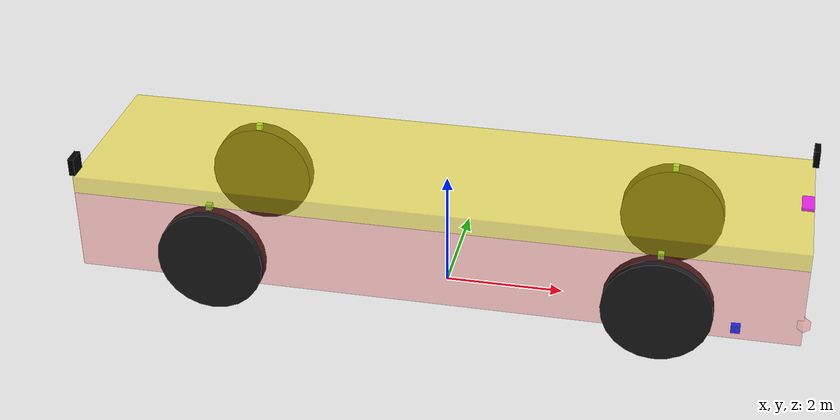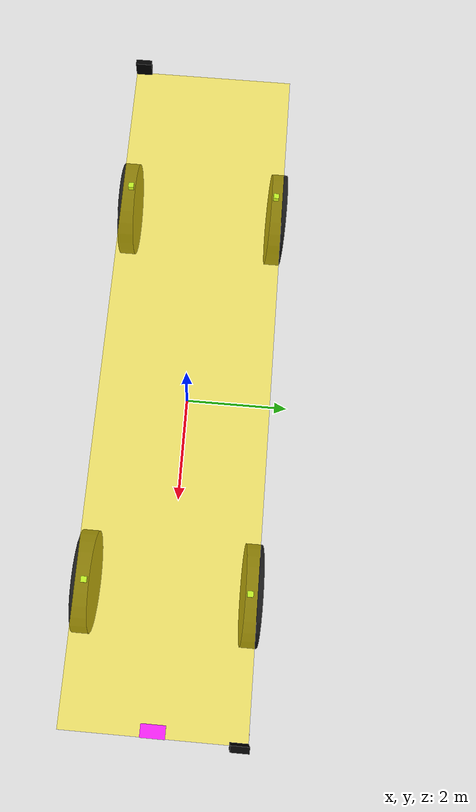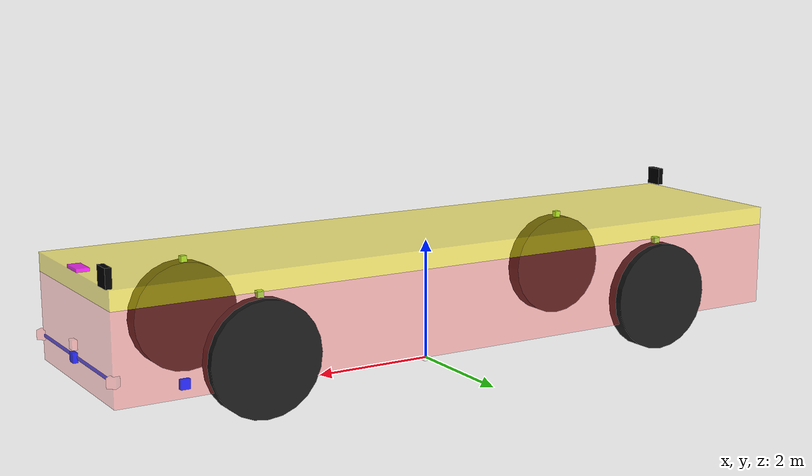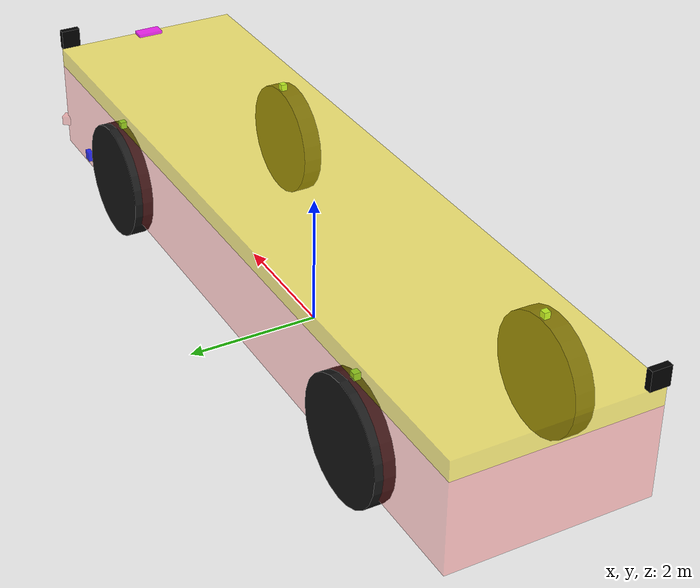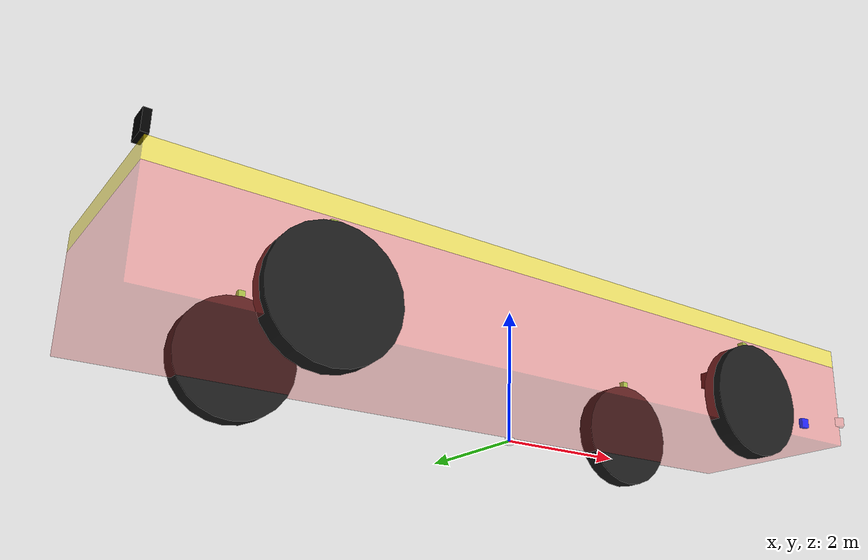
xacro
<?xml version="1.0"?>

<!-- Robot name -->
<robot name="agv" xmlns:xacro="http://www.ros.org/wiki/xacro">

<!-- Included URDF Files -->
<xacro:include filename="$(find agv_gazebo)/gazebo/agv_hil.gazebo" />
<xacro:include filename="$(find arts_description)/urdf/arts.xacro" />

<!-- user input dimensions  ( DEBUG: all mass values have been divided by 100 )  -->
<xacro:property name="robot"    value="agv" />
<xacro:property name="pi"       value="3.141592" />
<xacro:property name="body_length"   value="12." />
<xacro:property name="body_width"    value="3" />
<xacro:property name="body_height"   value="1.4" />
<xacro:property name="body_mass"   value="1000." />
<xacro:property name="platform_length"   value="${body_length}" />
<xacro:property name="platform_width"   value="3." />
<xacro:property name="platform_height"   value=".3" />
<xacro:property name="platform_mass"   value="500." />
<xacro:property name="wheel_width"    value="0.05" />
<xacro:property name="wheel_width_vis"    value="0.3" />
<xacro:property name="wheel_radius"   value="0.9" />
<xacro:property name="wheel_mass"   value="100." />
<xacro:property name="wheel_hinge_width"   value="0.1" />
<xacro:property name="wheel_hinge_mass"   value="10." />
<xacro:property name="lidar_mass"   value="1." />
<xacro:property name="lidar_side"   value="0.15" />

<!-- TNO definitions, measured in meters from ground -->
<xacro:property name="radarbeam_height"   value="0.05" />
<xacro:property name="radarbeam_mountingheight"   value="0.88" />
<xacro:property name="lider_side_mountingheight"   value="0.725" />
<xacro:property name="lider_side_offsetfront"   value="1.04" />
<xacro:property name="arts_mountingheight"	value="2.220" />
<xacro:property name="rtk_mountingheight"	value="1.720" />

<!-- derived dimensions -->
<xacro:property name="wheel_hinge_height"   value="${wheel_radius+0.1}" />
<xacro:property name="body_floor_clearance"   value="${wheel_radius+wheel_hinge_height-body_height}" />
<xacro:property name="footprint_to_baselink_height"   value="${body_floor_clearance+0.5*body_height}" />

<!-- calculated dimensions to measured dimension -->
<xacro:property name="baselink_to_ground_height"   value="${-footprint_to_baselink_height}" />
<xacro:property name="baselink_to_radarbeam_height"   value="${baselink_to_ground_height+radarbeam_mountingheight}" />
<xacro:property name="baselink_to_lidar_height"   value="${baselink_to_ground_height+lider_side_mountingheight}" />
<xacro:property name="baselink_to_arts_height"   value="${baselink_to_ground_height+arts_mountingheight}" />
<xacro:property name="baselink_to_rtk_height"   value="${baselink_to_ground_height+rtk_mountingheight}" />

<!-- ~~~~~~~~~~~~~~~~~~~~~~~ BODY AND PLATFORM ~~~~~~~~~~~~~~~~~~~~~~~~~~~~~~~~~~~~~~~~ -->

<!-- AGV Footprint Link (AGV footprint on ground)-->
<link name="${robot}_footprint">
    <visual>
        <origin xyz="0 0 0" rpy="0 0 0"/>
        <geometry>
            <box size="0.1 0.1 0.1"/>
        </geometry>
        <material name="white">
            <color rgba="1 1 1 0.1"/>
        </material>
    </visual>

<!--    Comment collision below for normal mode: wheels on te ground -->
<!--    Uncomment collision below for "Podium" mode: Useful to check wheel control without moving agv -->
   <collision>
        <origin xyz="0 0 0" rpy="0 0 0"/>
        <geometry>
            <box size="0.1 0.1 0.1"/>
        </geometry>
    </collision>
</link>

<!-- AGV Base Link (AGV body)-->
<joint name="${robot}_footprint_2_base" type="fixed" >
    <parent link="${robot}_footprint"/>
    <child link="${robot}_base_link"/>
    <origin xyz="0 0 ${footprint_to_baselink_height}" rpy="0 0 0"/>
</joint>
<link name="${robot}_base_link">
    <visual>
        <origin xyz="0 0 0" rpy="0 0 0"/>
        <geometry>
            <box size="${body_length} ${body_width} ${body_height}"/>
        </geometry>
        <material name="reddish">
            <color rgba="1 0.2 0.2 0.3"/>
        </material>
    </visual>

    <collision>
        <origin xyz="0 0 0" rpy="0 0 0"/>
        <geometry>
            <box size="${body_length} ${body_width} ${body_height}"/>
        </geometry>
    </collision>

    <inertial>
        <mass value="${body_mass}" />
        <origin xyz="0 0 0" rpy="0 0 0"/>
        <inertia ixx="${0.083*body_mass*(body_width*body_width+body_height*body_height)}"
                 ixy="0.0"
                 ixz="0.0"
                 iyy="${0.083*body_mass*(body_length*body_length+body_height*body_height)}"
                 iyz="0.0"
                 izz="${0.083*body_mass*(body_length*body_length+body_width*body_width)}" />
    </inertial>
</link>

<!-- AGV top platform-->
<joint name="${robot}_base_2_platform" type="fixed" >
    <parent link="${robot}_base_link"/>
    <child link="${robot}_platform"/>
    <origin xyz="0 0 ${0.5*body_height + 0.5*platform_height}" rpy="0 0 0"/>
</joint>
<link name="${robot}_platform">
    <visual>
        <origin xyz="0 0 0" rpy="0 0 0"/>
        <geometry>
            <box size="${platform_length} ${platform_width} ${platform_height}"/>
        </geometry>
        <material name="yellow">
            <color rgba="1.0 0.9 0.0 0.5"/>
        </material>
    </visual>

    <collision>
        <origin xyz="0 0 0" rpy="0 0 0"/>
        <geometry>
            <box size="${platform_length} ${platform_width} ${platform_height}"/>
        </geometry>
    </collision>

    <inertial>
        <mass value="${platform_mass}" />
        <origin xyz="0 0 0" rpy="0 0 0"/>
        <inertia ixx="${0.083*platform_mass*(platform_width*platform_width+platform_height*platform_height)}"
                    ixy="0.0"
                    ixz="0.0"
                    iyy="${0.083*platform_mass*(platform_length*platform_length+platform_height*platform_height)}"
                    iyz="0.0"
                    izz="${0.083*platform_mass*(platform_length*platform_length+platform_width*platform_width)}" />
    </inertial>
</link>

<!-- AGV forward marker -->
<joint name="${robot}_platform_2_fwd_mark" type="fixed" >
    <parent link="${robot}_platform"/>
    <child link="${robot}_fwd_mark"/>
    <origin xyz="${0.5*platform_length-0.1} 0 ${0.5*platform_height+0.025}" rpy="0 0 0"/>
</joint>
<link name="${robot}_fwd_mark">
    <visual>
        <origin xyz="0 0 0" rpy="0 0 0"/>
        <geometry>
            <box size="0.2 0.4 0.05"/>
        </geometry>
        <material name="purple">
            <color rgba="1.0 0.0 1.0 0.8"/>
        </material>
    </visual>

    <inertial>
        <mass value="0.01" />
        <origin xyz="0 0 0" rpy="0 0 0"/>
        <inertia ixx="0.01"
                ixy="0.0"
                ixz="0.0"
                iyy="0.01"
                iyz="0.0"
                izz="0.01" />
    </inertial>
</link>

<!-- ~~~~~~~~~~~~~~~~~~~~~~~~~~~~~~ WHEELS ~~~~~~~~~~~~~~~~~~~~~~~~~~~~~~~~~~~~~~~~~~~~ -->

<!-- front left hinge-->
<joint name="${robot}_platform_2_fl_hinge" type="revolute" >
    <parent link="${robot}_platform"/>
    <child link="${robot}_fl_hinge"/>
    <axis xyz="0 0 1"/>
    <limit effort="100000." lower="${-0.3*pi}" upper="${0.3*pi}" velocity="1."/>
    <dynamics damping="100."/>
    <origin xyz="${0.4*platform_length-wheel_radius-0.2} ${0.5*platform_width-0.5*wheel_hinge_width-wheel_width} ${-0.5*platform_height-0.5*wheel_hinge_height}" rpy="0 0 0"/>
</joint>
<link name="${robot}_fl_hinge">
    <visual>
        <origin xyz="0 0 0" rpy="0 0 0"/>
        <geometry>
            <box size="${wheel_hinge_width} ${wheel_hinge_width} ${wheel_hinge_height}"/>
        </geometry>
        <material name="green2">
            <color rgba="0.5 1 0.3 1"/>
        </material>
    </visual>

    <inertial>
        <mass value="${wheel_hinge_mass}" />
        <origin xyz="0 0 0" rpy="0 0 0"/>
        <inertia ixx="${0.083*wheel_hinge_mass*(wheel_hinge_width*wheel_hinge_width+wheel_hinge_height*wheel_hinge_height)}"
                    ixy="0.0"
                    ixz="0.0"
                    iyy="${0.083*wheel_hinge_mass*(wheel_hinge_width*wheel_hinge_width+wheel_hinge_height*wheel_hinge_height)}"
                    iyz="0.0"
                    izz="${0.083*wheel_hinge_mass*(wheel_hinge_width*wheel_hinge_width+wheel_hinge_width*wheel_hinge_width)}" />
    </inertial>

</link>

<!-- front left wheel-->
<joint name="${robot}_fl_hinge_2_wheel" type="continuous" >
    <parent link="${robot}_fl_hinge"/>
    <child link="${robot}_fl_wheel"/>
    <axis xyz="0 0 1"/>
    <limit effort="100000." velocity="${pi}"/>
    <dynamics damping="0.2"/>
    <origin xyz="0 ${0.5*wheel_hinge_width+0.5*wheel_width} ${-0.5*wheel_hinge_height}" rpy="${-0.5*pi} 0 0"/>
</joint>
<link name="${robot}_fl_wheel">
    <visual>
        <origin xyz="0 0 0" rpy="0 0 0"/>
        <geometry>
            <cylinder length="${wheel_width_vis}" radius="${wheel_radius}"/>
        </geometry>
        <material name="grey">
            <color rgba="0.1 0.1 0.1 1"/>
        </material>
    </visual>

    <collision>
        <origin xyz="0 0 0" rpy="0 0 0"/>
        <geometry>
            <cylinder length="${wheel_width}" radius="${wheel_radius}"/>
        </geometry>
    </collision>

    <inertial>
        <mass value="${wheel_mass}" />
        <origin xyz="0 0 0" rpy="0 0 0"/>
        <inertia ixx="${0.083*wheel_mass*(3*wheel_radius*wheel_radius+wheel_width*wheel_width)}"
                    ixy="0.0"
                    ixz="0.0"
                    iyy="${0.083*wheel_mass*(3*wheel_radius*wheel_radius+wheel_width*wheel_width)}"
                    iyz="0.0"
                    izz="${0.5*wheel_mass*wheel_radius*wheel_radius}" />
    </inertial>
</link>

<!-- front right hinge-->
<joint name="${robot}_platform_2_fr_hinge" type="revolute" >
    <parent link="${robot}_platform"/>
    <child link="${robot}_fr_hinge"/>
    <axis xyz="0 0 1"/>
    <limit effort="100000." lower="${-0.3*pi}" upper="${0.3*pi}" velocity="1."/>
    <dynamics damping="100."/>
    <origin xyz="${0.4*platform_length-wheel_radius-0.2} ${-0.5*platform_width+0.5*wheel_hinge_width+wheel_width} ${-0.5*platform_height-0.5*wheel_hinge_height}" rpy="0 0 0"/>
</joint>
<link name="${robot}_fr_hinge">
    <visual>
        <origin xyz="0 0 0" rpy="0 0 0"/>
        <geometry>
            <box size="${wheel_hinge_width} ${wheel_hinge_width} ${wheel_hinge_height}"/>
        </geometry>
        <material name="green2">
            <color rgba="0.5 1 0.3 1"/>
        </material>
    </visual>

    <inertial>
        <mass value="${wheel_hinge_mass}" />
        <origin xyz="0 0 0" rpy="0 0 0"/>
        <inertia ixx="${0.083*wheel_hinge_mass*(wheel_hinge_width*wheel_hinge_width+wheel_hinge_height*wheel_hinge_height)}"
                    ixy="0.0"
                    ixz="0.0"
                    iyy="${0.083*wheel_hinge_mass*(wheel_hinge_width*wheel_hinge_width+wheel_hinge_height*wheel_hinge_height)}"
                    iyz="0.0"
                    izz="${0.083*wheel_hinge_mass*(wheel_hinge_width*wheel_hinge_width+wheel_hinge_width*wheel_hinge_width)}" />
    </inertial>

</link>

<!-- front right wheel-->
<joint name="${robot}_fr_hinge_2_wheel" type="continuous" >
    <parent link="${robot}_fr_hinge"/>
    <child link="${robot}_fr_wheel"/>
    <axis xyz="0 0 1"/>
    <limit effort="100000." velocity="${pi}"/>
    <dynamics damping="0.2"/>
    <origin xyz="0 ${-0.5*wheel_hinge_width-0.5*wheel_width} ${-0.5*wheel_hinge_height}" rpy="${-0.5*pi} 0 0"/>
</joint>
<link name="${robot}_fr_wheel">
    <visual>
        <origin xyz="0 0 0" rpy="0 0 0"/>
        <geometry>
            <cylinder length="${wheel_width_vis}" radius="${wheel_radius}"/>
        </geometry>
        <material name="grey">
            <color rgba="0.1 0.1 0.1 1"/>
        </material>
    </visual>

    <collision>
        <origin xyz="0 0 0" rpy="0 0 0"/>
        <geometry>
            <cylinder length="${wheel_width}" radius="${wheel_radius}"/>
        </geometry>
    </collision>

    <inertial>
        <mass value="${wheel_mass}" />
        <origin xyz="0 0 0" rpy="0 0 0"/>
        <inertia ixx="${0.083*wheel_mass*(3*wheel_radius*wheel_radius+wheel_width*wheel_width)}"
                    ixy="0.0"
                    ixz="0.0"
                    iyy="${0.083*wheel_mass*(3*wheel_radius*wheel_radius+wheel_width*wheel_width)}"
                    iyz="0.0"
                    izz="${0.5*wheel_mass*wheel_radius*wheel_radius}" />
    </inertial>
</link>

<!-- back left hinge-->
<joint name="${robot}_platform_2_bl_hinge" type="revolute" >
    <parent link="${robot}_platform"/>
    <child link="${robot}_bl_hinge"/>
    <axis xyz="0 0 1"/>
    <limit effort="100000." lower="${-0.3*pi}" upper="${0.3*pi}" velocity="1."/>
    <dynamics damping="100."/>
    <origin xyz="${-0.4*platform_length+wheel_radius+0.2} ${0.5*platform_width-0.5*wheel_hinge_width-wheel_width} ${-0.5*platform_height-0.5*wheel_hinge_height}" rpy="0 0 0"/>
</joint>
<link name="${robot}_bl_hinge">
    <visual>
        <origin xyz="0 0 0" rpy="0 0 0"/>
        <geometry>
            <box size="${wheel_hinge_width} ${wheel_hinge_width} ${wheel_hinge_height}"/>
        </geometry>
        <material name="green2">
            <color rgba="0.5 1 0.3 1"/>
        </material>
    </visual>

    <inertial>
        <mass value="${wheel_hinge_mass}" />
        <origin xyz="0 0 0" rpy="0 0 0"/>
        <inertia ixx="${0.083*wheel_hinge_mass*(wheel_hinge_width*wheel_hinge_width+wheel_hinge_height*wheel_hinge_height)}"
                    ixy="0.0"
                    ixz="0.0"
                    iyy="${0.083*wheel_hinge_mass*(wheel_hinge_width*wheel_hinge_width+wheel_hinge_height*wheel_hinge_height)}"
                    iyz="0.0"
                    izz="${0.083*wheel_hinge_mass*(wheel_hinge_width*wheel_hinge_width+wheel_hinge_width*wheel_hinge_width)}" />
    </inertial>
</link>

<!-- back left wheel-->
<joint name="${robot}_bl_hinge_2_wheel" type="continuous" >
    <parent link="${robot}_bl_hinge"/>
    <child link="${robot}_bl_wheel"/>
    <axis xyz="0 0 1"/>
    <limit effort="100000." velocity="${pi}"/>
    <dynamics damping="0.2"/>
    <origin xyz="0 ${0.5*wheel_hinge_width+0.5*wheel_width} ${-0.5*wheel_hinge_height}" rpy="${-0.5*pi} 0 0"/>
</joint>
<link name="${robot}_bl_wheel">
    <visual>
        <origin xyz="0 0 0" rpy="0 0 0"/>
        <geometry>
            <cylinder length="${wheel_width_vis}" radius="${wheel_radius}"/>
        </geometry>
        <material name="grey">
            <color rgba="0.1 0.1 0.1 1"/>
        </material>
    </visual>

    <collision>
        <origin xyz="0 0 0" rpy="0 0 0"/>
        <geometry>
            <cylinder length="${wheel_width}" radius="${wheel_radius}"/>
        </geometry>
    </collision>

    <inertial>
        <mass value="${wheel_mass}" />
        <origin xyz="0 0 0" rpy="0 0 0"/>
        <inertia ixx="${0.083*wheel_mass*(3*wheel_radius*wheel_radius+wheel_width*wheel_width)}"
                    ixy="0.0"
                    ixz="0.0"
                    iyy="${0.083*wheel_mass*(3*wheel_radius*wheel_radius+wheel_width*wheel_width)}"
                    iyz="0.0"
                    izz="${0.5*wheel_mass*wheel_radius*wheel_radius}" />
    </inertial>
</link>

<!-- back right hinge-->
<joint name="${robot}_platform_2_br_hinge" type="revolute" >
    <parent link="${robot}_platform"/>
    <child link="${robot}_br_hinge"/>
    <axis xyz="0 0 1"/>
    <limit effort="100000." lower="${-0.3*pi}" upper="${0.3*pi}" velocity="1."/>
    <dynamics damping="100."/>
    <origin xyz="${-0.4*platform_length+wheel_radius+0.2} ${-0.5*platform_width+0.5*wheel_hinge_width+wheel_width} ${-0.5*platform_height-0.5*wheel_hinge_height}" rpy="0 0 0"/>
</joint>
<link name="${robot}_br_hinge">
    <visual>
        <origin xyz="0 0 0" rpy="0 0 0"/>
        <geometry>
            <box size="${wheel_hinge_width} ${wheel_hinge_width} ${wheel_hinge_height}"/>
        </geometry>
        <material name="green2">
            <color rgba="0.5 1 0.3 1"/>
        </material>
    </visual>

    <inertial>
        <mass value="${wheel_hinge_mass}" />
        <origin xyz="0 0 0" rpy="0 0 0"/>
        <inertia ixx="${0.083*wheel_hinge_mass*(wheel_hinge_width*wheel_hinge_width+wheel_hinge_height*wheel_hinge_height)}"
                    ixy="0.0"
                    ixz="0.0"
                    iyy="${0.083*wheel_hinge_mass*(wheel_hinge_width*wheel_hinge_width+wheel_hinge_height*wheel_hinge_height)}"
                    iyz="0.0"
                    izz="${0.083*wheel_hinge_mass*(wheel_hinge_width*wheel_hinge_width+wheel_hinge_width*wheel_hinge_width)}" />
    </inertial>
</link>

<!-- back right wheel-->
<joint name="${robot}_br_hinge_2_wheel" type="continuous" >
    <parent link="${robot}_br_hinge"/>
    <child link="${robot}_br_wheel"/>
    <axis xyz="0 0 1"/>
    <limit effort="100000." velocity="${pi}"/>
    <dynamics damping="0.2"/>
    <origin xyz="0 ${-0.5*wheel_hinge_width-0.5*wheel_width} ${-0.5*wheel_hinge_height}" rpy="${-0.5*pi} 0 0"/>
</joint>
<link name="${robot}_br_wheel">
    <visual>
        <origin xyz="0 0 0" rpy="0 0 0"/>
        <geometry>
            <cylinder length="${wheel_width_vis}" radius="${wheel_radius}"/>
        </geometry>
        <material name="grey">
            <color rgba="0.1 0.1 0.1 1"/>
        </material>
    </visual>

    <collision>
        <origin xyz="0 0 0" rpy="0 0 0"/>
        <geometry>
            <cylinder length="${wheel_width}" radius="${wheel_radius}"/>
        </geometry>
    </collision>

    <inertial>
        <mass value="${wheel_mass}" />
        <origin xyz="0 0 0" rpy="0 0 0"/>
        <inertia ixx="${0.083*wheel_mass*(3*wheel_radius*wheel_radius+wheel_width*wheel_width)}"
                    ixy="0.0"
                    ixz="0.0"
                    iyy="${0.083*wheel_mass*(3*wheel_radius*wheel_radius+wheel_width*wheel_width)}"
                    iyz="0.0"
                    izz="${0.5*wheel_mass*wheel_radius*wheel_radius}" />
    </inertial>
</link>

<!-- ~~~~~~~~~~~~~~~~~~~~~~~~~~~~~~ TNO/MOUNT & Sensors ~~~~~~~~~~~~~~~~~~~~~~~~~~~~~~~~~~~~~~~~~ -->
<!-- radar beam -->
<joint name="${robot}_baselink_2_radarbeam" type="fixed" >
    <parent link="${robot}_base_link"/>
    <child link="${robot}_radarbeam_link"/>
    <origin xyz="${0.5*platform_length} 0 ${baselink_to_radarbeam_height+0.5*radarbeam_height}" rpy="0 0 0"/>
</joint>
<link name="${robot}_radarbeam_link">
    <visual>
        <origin xyz="0 0 0" rpy="0 0 0"/>
        <geometry>
            <box size="0.03 3 ${radarbeam_height}"/>
        </geometry>
        <material name="blueish">
            <color rgba="0.3 0.2 1 0.8"/>
        </material>
    </visual>
</link>

<!-- lidar-front center -->
<joint name="${robot}_radarbeam_2_fc_lidar" type="fixed" >
    <parent link="${robot}_radarbeam_link"/>
    <child link="${robot}_lidar0"/>
    <origin xyz="0 0 0" rpy="0 0 0"/>
</joint>
<link name="${robot}_lidar0">
    <visual>
        <origin xyz="0 0 0" rpy="0 0 0"/>
        <geometry>
            <box size="${lidar_side} ${lidar_side} ${lidar_side}"/>
        </geometry>
        <material name="blue">
            <color rgba="0.0 0.0 1. 0.8"/>
        </material>
    </visual>
</link>

<!-- {baselink} + baselink-radarbeamheight+laserscanner_height -->
<!-- lidar-front left -->
<joint name="${robot}_baselink_2_fl_lidar" type="fixed" >
    <parent link="${robot}_base_link"/>
    <child link="${robot}_lidar1"/>
    <origin xyz="${0.5*platform_length-lider_side_offsetfront} ${0.5*platform_width} ${baselink_to_lidar_height}" rpy="0 0 ${pi/2}"/>
</joint>
<link name="${robot}_lidar1">
    <visual>
        <origin xyz="0 0 0" rpy="0 0 0"/>
        <geometry>
            <box size="${lidar_side} ${lidar_side} ${lidar_side}"/>
        </geometry>
        <material name="blue">
            <color rgba="0.0 0.0 1. 0.8"/>
        </material>
    </visual>
</link>
<!-- lidar-front right -->
<joint name="${robot}_baselink_2_fr_lidar" type="fixed" >
    <parent link="${robot}_base_link"/>
    <child link="${robot}_lidar2"/>
    <origin xyz="${0.5*platform_length-lider_side_offsetfront} ${-0.5*platform_width} ${baselink_to_lidar_height}" rpy="0 0 ${-pi/2}"/>
</joint>
<link name="${robot}_lidar2">
    <visual>
        <origin xyz="0 0 0" rpy="0 0 0"/>
        <geometry>
            <box size="${lidar_side} ${lidar_side} ${lidar_side}"/>
        </geometry>
        <material name="blue">
            <color rgba="0.0 0.0 1. 0.8"/>
        </material>
    </visual>
</link>
<!-- 20X-front left -->
<joint name="${robot}_beam_2_radarFL" type="fixed" >
    <parent link="${robot}_radarbeam_link"/>
    <child link="${robot}_radar_fl"/>
    <origin xyz="0 1.5 0" rpy="0 0 0.8219"/>
</joint>
<link name="${robot}_radar_fl">
    <visual>
        <origin xyz="0 0 0" rpy="0 0 0"/>
        <geometry>
            <box size="0.15 0.15 0.15"/>
        </geometry>
        <material name="reddish">
            <color rgba="1 0.2 0.2 0.3"/>
        </material>
    </visual>
</link>
<!-- 20X-front right -->
<joint name="${robot}_beam_2_radarLR" type="fixed" >
    <parent link="${robot}_radarbeam_link"/>
    <child link="${robot}_radar_fr"/>
    <origin xyz="0 -1.5 0" rpy="0 0 -0.8219"/>
</joint>
<link name="${robot}_radar_fr">
    <visual>
        <origin xyz="0 0 0" rpy="0 0 0"/>
        <geometry>
            <box size="0.15 0.15 0.15"/>
        </geometry>
        <material name="reddish">
            <color rgba="1 0.2 0.2 0.3"/>
        </material>
    </visual>
</link>
<!-- 30x-front -->
<joint name="${robot}_beam_2_radarFC" type="fixed" >
    <parent link="${robot}_radarbeam_link"/>
    <child link="${robot}_radar_fc"/>
    <origin xyz="0 0 0.194" rpy="0 0 0"/>
</joint>
<link name="${robot}_radar_fc">
    <visual>
        <origin xyz="0 0 0" rpy="0 0 0"/>
        <geometry>
            <box size="0.15 0.15 0.15"/>
        </geometry>
        <material name="reddish">
            <color rgba="1 0.2 0.2 0.3"/>
        </material>
    </visual>
</link>

<!-- RTK-front -->
<joint name="${robot}_base_2_f_rtk" type="fixed" >
    <parent link="${robot}_base_link"/>
    <child link="${robot}_f_rtk"/>
    <origin xyz="${0.5*platform_length-0.2} 0 ${baselink_to_rtk_height}" rpy="0 0 0"/>
</joint>
<link name="${robot}_f_rtk">
    <visual>
        <origin xyz="0 0 0" rpy="0 0 0"/>
        <geometry>
            <box size="0.1 0.1 0.1"/>
        </geometry>
        <material name="blue">
            <color rgba="0.0 0.0 1. 0.8"/>
        </material>
    </visual>
</link>

<!-- RTK-rear -->
<joint name="${robot}_base_2_r_rtk" type="fixed" >
    <parent link="${robot}_base_link"/>
    <child link="${robot}_r_rtk"/>
    <origin xyz="${-0.5*platform_length+0.2} 0 ${baselink_to_rtk_height}" rpy="0 0 0"/>
</joint>
<link name="${robot}_r_rtk">
    <visual>
        <origin xyz="0 0 0" rpy="0 0 0"/>
        <geometry>
            <box size="0.1 0.1 0.1"/>
        </geometry>
        <material name="blue">
            <color rgba="0.0 0.0 1. 0.8"/>
        </material>
    </visual>
</link>

<xacro:arts_node suffix="0" x="${0.5*platform_length}" y="${0.5*platform_width-0.15}" z="${baselink_to_arts_height+0.15}" base_frame="${robot}_base_link" rp="${-pi/2}" />
<xacro:arts_node suffix="1" x="${-0.5*platform_length}" y="${-0.5*platform_width+0.15}" z="${baselink_to_arts_height+0.15}" base_frame="${robot}_base_link" rp="${-pi/2}" />
<!-- ~~~~~~~~~~~~~~~~~~~~~~~~~~~~~~ SENSORS ~~~~~~~~~~~~~~~~~~~~~~~~~~~~~~~~~~~~~~~~~~~ -->

<!-- ~~~~~~~~~~~~~~~~~~~~~~~~~~~~~~ TRANSMISSIONS ~~~~~~~~~~~~~~~~~~~~~~~~~~~~~~~~~~~~~~~~~~~ -->
<!-- front left steering -->
<transmission name="${robot}_fl_steer">
    <type>transmission_interface/SimpleTransmission</type>
    <joint name="${robot}_platform_2_fl_hinge">
        <hardwareInterface>EffortJointInterface</hardwareInterface>
    </joint>
    <actuator name="${robot}_fl_steer_motor">
        <hardwareInterface>EffortJointInterface</hardwareInterface>
        <mechanicalReduction>1</mechanicalReduction>
    </actuator>
</transmission>

<!-- front right steering -->
<transmission name="${robot}_fr_steer">
    <type>transmission_interface/SimpleTransmission</type>
    <joint name="${robot}_platform_2_fr_hinge">
        <hardwareInterface>EffortJointInterface</hardwareInterface>
    </joint>
    <actuator name="${robot}_fr_steer_motor">
        <hardwareInterface>EffortJointInterface</hardwareInterface>
        <mechanicalReduction>1</mechanicalReduction>
    </actuator>
</transmission>

<!-- back left steering -->
<transmission name="${robot}_bl_steer">
    <type>transmission_interface/SimpleTransmission</type>
    <joint name="${robot}_platform_2_bl_hinge">
        <hardwareInterface>EffortJointInterface</hardwareInterface>
    </joint>
    <actuator name="${robot}_bl_steer_motor">
        <hardwareInterface>EffortJointInterface</hardwareInterface>
        <mechanicalReduction>1</mechanicalReduction>
    </actuator>
</transmission>

<!-- back right steering -->
<transmission name="${robot}_br_steer">
    <type>transmission_interface/SimpleTransmission</type>
    <joint name="${robot}_platform_2_br_hinge">
        <hardwareInterface>EffortJointInterface</hardwareInterface>
    </joint>
    <actuator name="${robot}_br_steer_motor">
        <hardwareInterface>EffortJointInterface</hardwareInterface>
        <mechanicalReduction>1</mechanicalReduction>
    </actuator>
</transmission>

<!-- front left driving -->
<transmission name="${robot}_fl_drive">
    <type>transmission_interface/SimpleTransmission</type>
    <joint name="${robot}_fl_hinge_2_wheel">
        <hardwareInterface>EffortJointInterface</hardwareInterface>
    </joint>
    <actuator name="${robot}_fl_drive_motor">
        <hardwareInterface>EffortJointInterface</hardwareInterface>
        <mechanicalReduction>1</mechanicalReduction>
    </actuator>
</transmission>

<!-- front right driving -->
<transmission name="${robot}_fr_drive">
    <type>transmission_interface/SimpleTransmission</type>
    <joint name="${robot}_fr_hinge_2_wheel">
        <hardwareInterface>EffortJointInterface</hardwareInterface>
    </joint>
    <actuator name="${robot}_fr_drive_motor">
        <hardwareInterface>EffortJointInterface</hardwareInterface>
        <mechanicalReduction>1</mechanicalReduction>
    </actuator>
</transmission>

<!-- back left driving -->
<transmission name="${robot}_bl_drive">
    <type>transmission_interface/SimpleTransmission</type>
    <joint name="${robot}_bl_hinge_2_wheel">
        <hardwareInterface>EffortJointInterface</hardwareInterface>
    </joint>
    <actuator name="${robot}_bl_drive_motor">
        <hardwareInterface>EffortJointInterface</hardwareInterface>
        <mechanicalReduction>1</mechanicalReduction>
    </actuator>
</transmission>

<!-- back right driving -->
<transmission name="${robot}_br_drive">
    <type>transmission_interface/SimpleTransmission</type>
    <joint name="${robot}_br_hinge_2_wheel">
        <hardwareInterface>EffortJointInterface</hardwareInterface>
    </joint>
    <actuator name="${robot}_br_drive_motor">
        <hardwareInterface>EffortJointInterface</hardwareInterface>
        <mechanicalReduction>1</mechanicalReduction>
    </actuator>
</transmission>

</robot>

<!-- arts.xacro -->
<robot xmlns:xacro="http://ros.org/wiki/xacro">
	<xacro:macro name="arts_node" params="suffix x y z base_frame rr:=0 rp:=0 ry:=0">
	    <link name="arts_node_${suffix}">
		<visual>
		    <geometry>
			<box size="0.3 0.3 0.1"/>
		    </geometry>
		    <material name="black">
			<color rgba="0 0 0 1"/>
		    </material>
		</visual>
		<collision>
		    <geometry>
			<!-- Actual sizes: H=18cm (base)+13.8cm (antenna), W=23.6cm, depth = 3.5cm -->
			<box size="0.3 0.3 0.1"/>
		    </geometry>
		</collision>
	    </link>
	    <joint name="arts_node_${suffix}_location" type="fixed">
		<parent link="${base_frame}"/>
		<child link="arts_node_${suffix}"/>
		<origin xyz="${x} ${y} ${z}" rpy="${rr} ${rp} ${ry}" />
	    </joint>
	</xacro:macro>
</robot>
